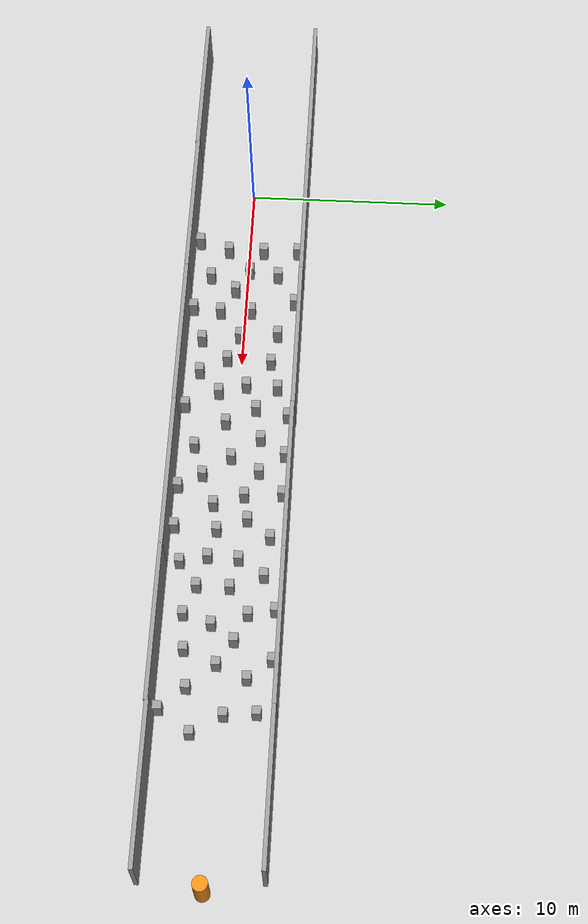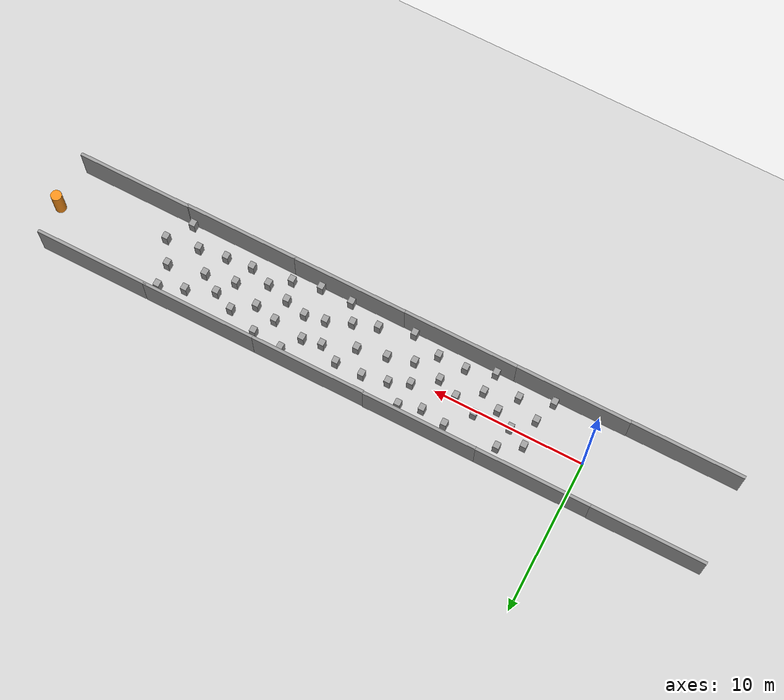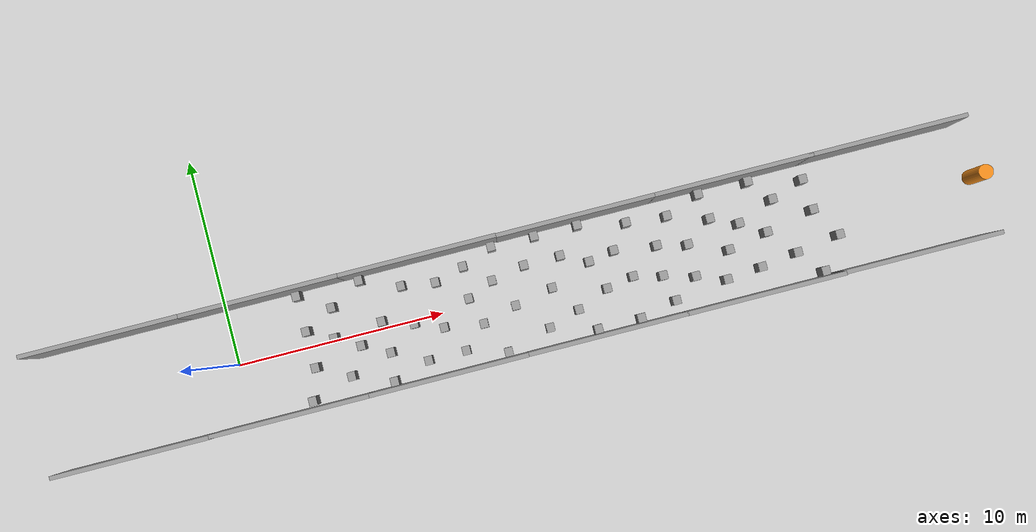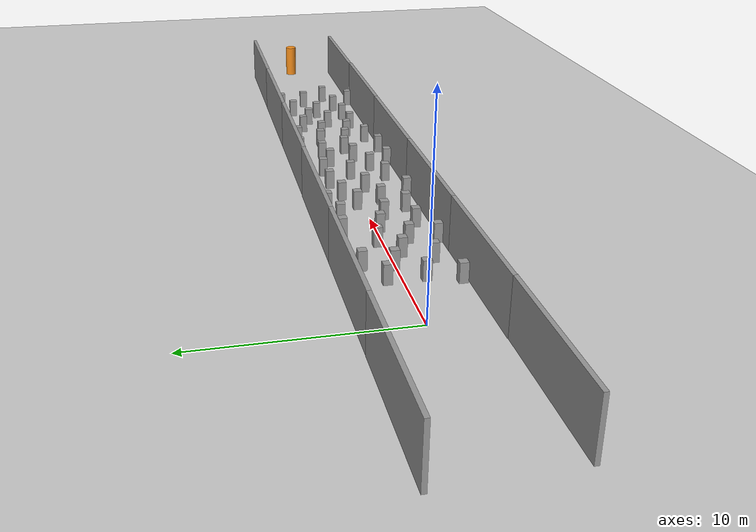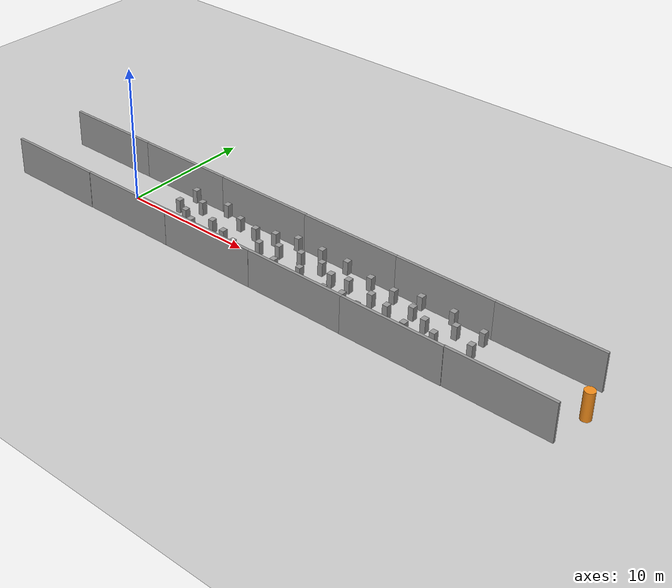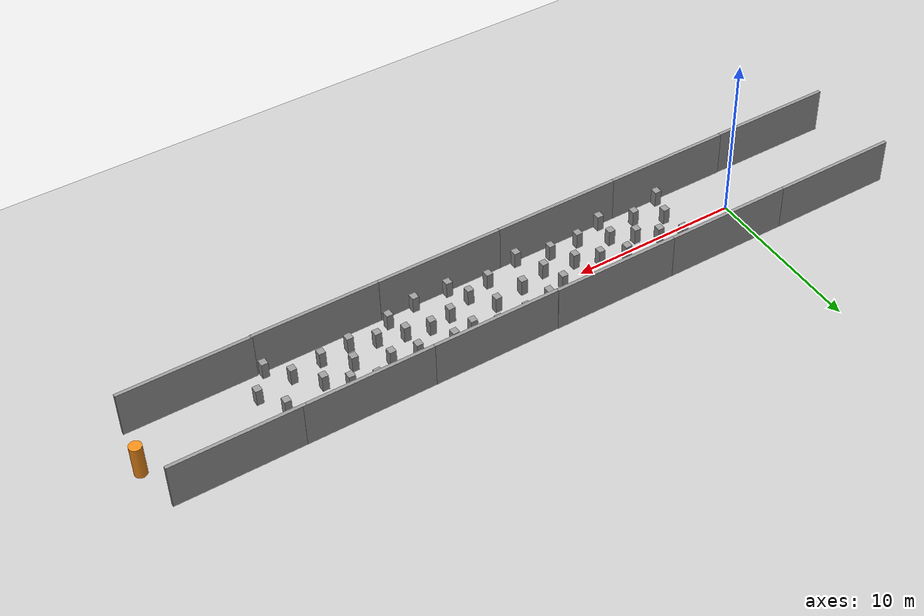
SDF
<sdf version="1.6">
 <world name="default">
  <plugin filename="gz-sim-physics-system" name="gz::sim::systems::Physics"/>
  <plugin filename="gz-sim-sensors-system" name="gz::sim::systems::Sensors">
   <render_engine>ogre2</render_engine>
  </plugin>
  <plugin filename="gz-sim-imu-system" name="gz::sim::systems::Imu"/>
  <plugin filename="gz-sim-scene-broadcaster-system" name="gz::sim::systems::SceneBroadcaster"/>
  <plugin filename="gz-sim-user-commands-system" name="gz::sim::systems::UserCommands"/>
  <light name="sun" type="directional">
   <pose>0 0 10 0 -0 0</pose>
   <diffuse>0.8 0.8 0.8 1</diffuse>
   <specular>0.2 0.2 0.2 1</specular>
   <attenuation>
    <range>1000</range>
    <constant>0.9</constant>
    <linear>0.01</linear>
    <quadratic>0.001</quadratic>
   </attenuation>
   <direction>-0.5 0.1 -0.9</direction>
  </light>
  <model name="ground_plane">
   <static>1</static>
   <link name="link">
    <collision name="collision">
     <geometry><plane><normal>0 0 1</normal><size>100 100</size></plane></geometry>
     <surface><friction><ode><mu>1000</mu><mu2>1000</mu2></ode></friction></surface>
    </collision>
    <visual name="visual">
     <cast_shadows>0</cast_shadows>
     <geometry><plane><normal>0 0 1</normal><size>100 100</size></plane></geometry>
     <material>
      <script><uri>file://media/materials/scripts/gazebo.material</uri><name>Gazebo/Grey</name></script>
     </material>
    </visual>
    <velocity_decay><linear>0</linear><angular>0</angular></velocity_decay>
   </link>
  </model>
  <physics name="default_physics" default="0" type="ode">
   <max_step_size>0.001</max_step_size>
   <real_time_factor>1</real_time_factor>
   <real_time_update_rate>1000</real_time_update_rate>
  </physics>
  <scene><ambient>0.4 0.4 0.4 1</ambient><background>0.7 0.7 0.7 1</background><shadows>1</shadows></scene>
  <spherical_coordinates>
   <surface_model>EARTH_WGS84</surface_model>
   <latitude_deg>0</latitude_deg>
   <longitude_deg>0</longitude_deg>
   <elevation>0</elevation>
   <heading_deg>0</heading_deg>
  </spherical_coordinates>
  <model name="grey_wall">
   <static>1</static>
   <link name="link">
    <pose>0 0 1.4 0 -0 0</pose>
    <collision name="collision"><geometry><box><size>7.5 0.2 2.8</size></box></geometry></collision>
    <visual name="visual">
     <cast_shadows>0</cast_shadows>
     <geometry><box><size>7.5 0.2 2.8</size></box></geometry>
     <material>
      <script>
       <uri>model://grey_wall/materials/scripts</uri>
       <uri>model://grey_wall/materials/textures</uri>
       <name>vrc/grey_wall</name>
      </script>
     </material>
    </visual>
    <velocity_decay><linear>0</linear><angular>0</angular></velocity_decay>
   </link>
   <pose>17.1032 2.73796 0 0 -0 0</pose>
  </model>
  <model name="grey_wall_0">
   <static>1</static>
   <link name="link">
    <pose>0 0 1.4 0 -0 0</pose>
    <collision name="collision"><geometry><box><size>7.5 0.2 2.8</size></box></geometry></collision>
    <visual name="visual">
     <cast_shadows>0</cast_shadows>
     <geometry><box><size>7.5 0.2 2.8</size></box></geometry>
     <material>
      <script>
       <uri>model://grey_wall/materials/scripts</uri>
       <uri>model://grey_wall/materials/textures</uri>
       <name>vrc/grey_wall</name>
      </script>
     </material>
    </visual>
    <velocity_decay><linear>0</linear><angular>0</angular></velocity_decay>
   </link>
   <pose>17.2246 -2.87669 0 0 -0 0</pose>
  </model>
  <gravity>0 0 -9.8</gravity>
  <magnetic_field>6e-06 2.3e-05 -4.2e-05</magnetic_field>
  <atmosphere type="adiabatic"/>
  <model name="grey_wall_clone">
   <static>1</static>
   <link name="link">
    <pose>0 0 1.4 0 -0 0</pose>
    <collision name="collision"><geometry><box><size>7.5 0.2 2.8</size></box></geometry></collision>
    <visual name="visual">
     <cast_shadows>0</cast_shadows>
     <geometry><box><size>7.5 0.2 2.8</size></box></geometry>
     <material>
      <script>
       <uri>model://grey_wall/materials/scripts</uri>
       <uri>model://grey_wall/materials/textures</uri>
       <name>vrc/grey_wall</name>
      </script>
     </material>
    </visual>
    <velocity_decay><linear>0</linear><angular>0</angular></velocity_decay>
   </link>
   <pose>2.16529 2.76561 0 0 -0 0</pose>
  </model>
  <model name="grey_wall_clone_0">
   <static>1</static>
   <link name="link">
    <pose>0 0 1.4 0 -0 0</pose>
    <collision name="collision"><geometry><box><size>7.5 0.2 2.8</size></box></geometry></collision>
    <visual name="visual">
     <cast_shadows>0</cast_shadows>
     <geometry><box><size>7.5 0.2 2.8</size></box></geometry>
     <material>
      <script>
       <uri>model://grey_wall/materials/scripts</uri>
       <uri>model://grey_wall/materials/textures</uri>
       <name>vrc/grey_wall</name>
      </script>
     </material>
    </visual>
    <velocity_decay><linear>0</linear><angular>0</angular></velocity_decay>
   </link>
   <pose>2.23318 -2.88881 0 0 -0 0</pose>
  </model>
  <model name="grey_wall_clone_1">
   <static>1</static>
   <link name="link">
    <pose>0 0 1.4 0 -0 0</pose>
    <collision name="collision"><geometry><box><size>7.5 0.2 2.8</size></box></geometry></collision>
    <visual name="visual">
     <cast_shadows>0</cast_shadows>
     <geometry><box><size>7.5 0.2 2.8</size></box></geometry>
     <material>
      <script>
       <uri>model://grey_wall/materials/scripts</uri>
       <uri>model://grey_wall/materials/textures</uri>
       <name>vrc/grey_wall</name>
      </script>
     </material>
    </visual>
    <velocity_decay><linear>0</linear><angular>0</angular></velocity_decay>
   </link>
   <pose>9.72907 -2.8848 0 0 -0 0</pose>
  </model>
  <model name="grey_wall_clone_2">
   <static>1</static>
   <link name="link">
    <pose>0 0 1.4 0 -0 0</pose>
    <collision name="collision"><geometry><box><size>7.5 0.2 2.8</size></box></geometry></collision>
    <visual name="visual">
     <cast_shadows>0</cast_shadows>
     <geometry><box><size>7.5 0.2 2.8</size></box></geometry>
     <material>
      <script>
       <uri>model://grey_wall/materials/scripts</uri>
       <uri>model://grey_wall/materials/textures</uri>
       <name>vrc/grey_wall</name>
      </script>
     </material>
    </visual>
    <velocity_decay><linear>0</linear><angular>0</angular></velocity_decay>
   </link>
   <pose>9.64207 2.76067 0 0 -0 0</pose>
  </model>
  <model name="grey_wall_clone_3">
   <static>1</static>
   <link name="link">
    <pose>0 0 1.4 0 -0 0</pose>
    <collision name="collision"><geometry><box><size>7.5 0.2 2.8</size></box></geometry></collision>
    <visual name="visual">
     <cast_shadows>0</cast_shadows>
     <geometry><box><size>7.5 0.2 2.8</size></box></geometry>
     <material>
      <script>
       <uri>model://grey_wall/materials/scripts</uri>
       <uri>model://grey_wall/materials/textures</uri>
       <name>vrc/grey_wall</name>
      </script>
     </material>
    </visual>
    <velocity_decay><linear>0</linear><angular>0</angular></velocity_decay>
   </link>
   <pose>24.5861 2.73638 0 0 -0 0</pose>
  </model>
  <model name="grey_wall_clone_4">
   <static>1</static>
   <link name="link">
    <pose>0 0 1.4 0 -0 0</pose>
    <collision name="collision"><geometry><box><size>7.5 0.2 2.8</size></box></geometry></collision>
    <visual name="visual">
     <cast_shadows>0</cast_shadows>
     <geometry><box><size>7.5 0.2 2.8</size></box></geometry>
     <material>
      <script>
       <uri>model://grey_wall/materials/scripts</uri>
       <uri>model://grey_wall/materials/textures</uri>
       <name>vrc/grey_wall</name>
      </script>
     </material>
    </visual>
    <velocity_decay><linear>0</linear><angular>0</angular></velocity_decay>
   </link>
   <pose>24.6598 -2.88231 0 0 -0 0</pose>
  </model>
  <model name="unit_box_0">
   <pose>11.8117 -0.980014 0.5 0 0 -0.001219</pose>
   <link name="link">
    <inertial>
     <mass>1</mass>
     <inertia>
      <ixx>0.166667</ixx>
      <ixy>0</ixy>
      <ixz>0</ixz>
      <iyy>0.166667</iyy>
      <iyz>0</iyz>
      <izz>0.166667</izz>
     </inertia>
    </inertial>
    <collision name="collision"><geometry><box><size>0.392878 0.422643 1</size></box></geometry></collision>
    <visual name="visual">
     <geometry><box><size>0.392878 0.422643 1</size></box></geometry>
     <material>
      <script><name>Gazebo/Grey</name><uri>file://media/materials/scripts/gazebo.material</uri></script>
     </material>
    </visual>
   </link>
  </model>
  <model name="unit_box_0_clone">
   <pose>12.6731 0.892982 0.500001 -2e-06 1e-06 -0.000714</pose>
   <link name="link">
    <inertial>
     <mass>1</mass>
     <inertia>
      <ixx>0.166667</ixx>
      <ixy>0</ixy>
      <ixz>0</ixz>
      <iyy>0.166667</iyy>
      <iyz>0</iyz>
      <izz>0.166667</izz>
     </inertia>
    </inertial>
    <collision name="collision"><geometry><box><size>0.392878 0.422643 1</size></box></geometry></collision>
    <visual name="visual">
     <geometry><box><size>0.392878 0.422643 1</size></box></geometry>
     <material>
      <script><name>Gazebo/Grey</name><uri>file://media/materials/scripts/gazebo.material</uri></script>
     </material>
    </visual>
   </link>
  </model>
  <model name="unit_box_0_clone_1">
   <pose>4.81267 0.1036 0.499999 -3e-06 4e-06 -0.000761</pose>
   <link name="link">
    <inertial>
     <mass>1</mass>
     <inertia>
      <ixx>0.166667</ixx>
      <ixy>0</ixy>
      <ixz>0</ixz>
      <iyy>0.166667</iyy>
      <iyz>0</iyz>
      <izz>0.166667</izz>
     </inertia>
    </inertial>
    <collision name="collision"><geometry><box><size>0.392878 0.422643 1</size></box></geometry></collision>
    <visual name="visual">
     <geometry><box><size>0.392878 0.422643 1</size></box></geometry>
     <material>
      <script><name>Gazebo/Grey</name><uri>file://media/materials/scripts/gazebo.material</uri></script>
     </material>
    </visual>
   </link>
  </model>
  <model name="unit_box_0_clone_2">
   <pose>3.13793 -2.51627 0.499999 -3e-06 -4e-06 -7.1e-05</pose>
   <link name="link">
    <inertial>
     <mass>1</mass>
     <inertia>
      <ixx>0.166667</ixx>
      <ixy>0</ixy>
      <ixz>0</ixz>
      <iyy>0.166667</iyy>
      <iyz>0</iyz>
      <izz>0.166667</izz>
     </inertia>
    </inertial>
    <collision name="collision"><geometry><box><size>0.392878 0.422643 1</size></box></geometry></collision>
    <visual name="visual">
     <geometry><box><size>0.392878 0.422643 1</size></box></geometry>
     <material>
      <script><name>Gazebo/Grey</name><uri>file://media/materials/scripts/gazebo.material</uri></script>
     </material>
    </visual>
   </link>
  </model>
  <model name="unit_box_0_clone_3">
   <pose>5.18507 -1.83299 0.499999 -3e-06 -4e-06 -0.000659</pose>
   <link name="link">
    <inertial>
     <mass>1</mass>
     <inertia>
      <ixx>0.166667</ixx>
      <ixy>0</ixy>
      <ixz>0</ixz>
      <iyy>0.166667</iyy>
      <iyz>0</iyz>
      <izz>0.166667</izz>
     </inertia>
    </inertial>
    <collision name="collision"><geometry><box><size>0.392878 0.422643 1</size></box></geometry></collision>
    <visual name="visual">
     <geometry><box><size>0.392878 0.422643 1</size></box></geometry>
     <material>
      <script><name>Gazebo/Grey</name><uri>file://media/materials/scripts/gazebo.material</uri></script>
     </material>
    </visual>
   </link>
  </model>
  <model name="unit_box_0_clone_5">
   <pose>5.02757 1.53336 0.500001 -1e-06 2e-06 -0.000603</pose>
   <link name="link">
    <inertial>
     <mass>1</mass>
     <inertia>
      <ixx>0.166667</ixx>
      <ixy>0</ixy>
      <ixz>0</ixz>
      <iyy>0.166667</iyy>
      <iyz>0</iyz>
      <izz>0.166667</izz>
     </inertia>
    </inertial>
    <collision name="collision"><geometry><box><size>0.392878 0.422643 1</size></box></geometry></collision>
    <visual name="visual">
     <geometry><box><size>0.392878 0.422643 1</size></box></geometry>
     <material>
      <script><name>Gazebo/Grey</name><uri>file://media/materials/scripts/gazebo.material</uri></script>
     </material>
    </visual>
   </link>
  </model>
  <model name="unit_box_0_clone_5_clone">
   <pose>8.61982 -0.165355 0.500001 -1e-06 -2e-06 -0.000689</pose>
   <link name="link">
    <inertial>
     <mass>1</mass>
     <inertia>
      <ixx>0.166667</ixx>
      <ixy>0</ixy>
      <ixz>0</ixz>
      <iyy>0.166667</iyy>
      <iyz>0</iyz>
      <izz>0.166667</izz>
     </inertia>
    </inertial>
    <collision name="collision"><geometry><box><size>0.392878 0.422643 1</size></box></geometry></collision>
    <visual name="visual">
     <geometry><box><size>0.392878 0.422643 1</size></box></geometry>
     <material>
      <script><name>Gazebo/Grey</name><uri>file://media/materials/scripts/gazebo.material</uri></script>
     </material>
    </visual>
   </link>
  </model>
  <model name="unit_box_0_clone_5_clone_0">
   <pose>6.58177 2.44935 0.5 0 -0 0</pose>
   <link name="link">
    <inertial>
     <mass>1</mass>
     <inertia>
      <ixx>0.166667</ixx>
      <ixy>0</ixy>
      <ixz>0</ixz>
      <iyy>0.166667</iyy>
      <iyz>0</iyz>
      <izz>0.166667</izz>
     </inertia>
    </inertial>
    <collision name="collision"><geometry><box><size>0.392878 0.422643 1</size></box></geometry></collision>
    <visual name="visual">
     <geometry><box><size>0.392878 0.422643 1</size></box></geometry>
     <material>
      <script><name>Gazebo/Grey</name><uri>file://media/materials/scripts/gazebo.material</uri></script>
     </material>
    </visual>
   </link>
  </model>
  <model name="unit_box_0_clone_5_clone_1">
   <pose>7.15955 0.314717 0.499999 2e-06 4e-06 -0.000516</pose>
   <link name="link">
    <inertial>
     <mass>1</mass>
     <inertia>
      <ixx>0.166667</ixx>
      <ixy>0</ixy>
      <ixz>0</ixz>
      <iyy>0.166667</iyy>
      <iyz>0</iyz>
      <izz>0.166667</izz>
     </inertia>
    </inertial>
    <collision name="collision"><geometry><box><size>0.392878 0.422643 1</size></box></geometry></collision>
    <visual name="visual">
     <geometry><box><size>0.392878 0.422643 1</size></box></geometry>
     <material>
      <script><name>Gazebo/Grey</name><uri>file://media/materials/scripts/gazebo.material</uri></script>
     </material>
    </visual>
   </link>
  </model>
  <model name="unit_box_0_clone_5_clone_2">
   <pose>9.95408 -0.687688 0.499999 3e-06 -4e-06 -0.000782</pose>
   <link name="link">
    <inertial>
     <mass>1</mass>
     <inertia>
      <ixx>0.166667</ixx>
      <ixy>0</ixy>
      <ixz>0</ixz>
      <iyy>0.166667</iyy>
      <iyz>0</iyz>
      <izz>0.166667</izz>
     </inertia>
    </inertial>
    <collision name="collision"><geometry><box><size>0.392878 0.422643 1</size></box></geometry></collision>
    <visual name="visual">
     <geometry><box><size>0.392878 0.422643 1</size></box></geometry>
     <material>
      <script><name>Gazebo/Grey</name><uri>file://media/materials/scripts/gazebo.material</uri></script>
     </material>
    </visual>
   </link>
  </model>
  <model name="unit_box_0_clone_5_clone_3">
   <pose>7.07881 -2.57348 0.5 0 -0 0</pose>
   <link name="link">
    <inertial>
     <mass>1</mass>
     <inertia>
      <ixx>0.166667</ixx>
      <ixy>0</ixy>
      <ixz>0</ixz>
      <iyy>0.166667</iyy>
      <iyz>0</iyz>
      <izz>0.166667</izz>
     </inertia>
    </inertial>
    <collision name="collision"><geometry><box><size>0.392878 0.422643 1</size></box></geometry></collision>
    <visual name="visual">
     <geometry><box><size>0.392878 0.422643 1</size></box></geometry>
     <material>
      <script><name>Gazebo/Grey</name><uri>file://media/materials/scripts/gazebo.material</uri></script>
     </material>
    </visual>
   </link>
  </model>
  <model name="unit_box_0_clone_5_clone_2_clone">
   <pose>3.5526 2.45429 0.5 0 -0 0</pose>
   <link name="link">
    <inertial>
     <mass>1</mass>
     <inertia>
      <ixx>0.166667</ixx>
      <ixy>0</ixy>
      <ixz>0</ixz>
      <iyy>0.166667</iyy>
      <iyz>0</iyz>
      <izz>0.166667</izz>
     </inertia>
    </inertial>
    <collision name="collision"><geometry><box><size>0.392878 0.422643 1</size></box></geometry></collision>
    <visual name="visual">
     <geometry><box><size>0.392878 0.422643 1</size></box></geometry>
     <material>
      <script><name>Gazebo/Grey</name><uri>file://media/materials/scripts/gazebo.material</uri></script>
     </material>
    </visual>
   </link>
  </model>
  <model name="unit_box_0_clone_5_clone_2_clone_0">
   <pose>10.0633 1.47354 0.499999 -2e-06 -4e-06 -0.000997</pose>
   <link name="link">
    <inertial>
     <mass>1</mass>
     <inertia>
      <ixx>0.166667</ixx>
      <ixy>0</ixy>
      <ixz>0</ixz>
      <iyy>0.166667</iyy>
      <iyz>0</iyz>
      <izz>0.166667</izz>
     </inertia>
    </inertial>
    <collision name="collision"><geometry><box><size>0.392878 0.422643 1</size></box></geometry></collision>
    <visual name="visual">
     <geometry><box><size>0.392878 0.422643 1</size></box></geometry>
     <material>
      <script><name>Gazebo/Grey</name><uri>file://media/materials/scripts/gazebo.material</uri></script>
     </material>
    </visual>
   </link>
  </model>
  <model name="unit_box_0_clone_5_clone_2_clone_1">
   <pose>14.3021 1.22095 0.499999 -3e-06 4e-06 -0.000873</pose>
   <link name="link">
    <inertial>
     <mass>1</mass>
     <inertia>
      <ixx>0.166667</ixx>
      <ixy>0</ixy>
      <ixz>0</ixz>
      <iyy>0.166667</iyy>
      <iyz>0</iyz>
      <izz>0.166667</izz>
     </inertia>
    </inertial>
    <collision name="collision"><geometry><box><size>0.392878 0.422643 1</size></box></geometry></collision>
    <visual name="visual">
     <geometry><box><size>0.392878 0.422643 1</size></box></geometry>
     <material>
      <script><name>Gazebo/Grey</name><uri>file://media/materials/scripts/gazebo.material</uri></script>
     </material>
    </visual>
   </link>
  </model>
  <model name="unit_box_0_clone_5_clone_2_clone_2">
   <pose>13.009 2.44935 0.5 0 -0 0</pose>
   <link name="link">
    <inertial>
     <mass>1</mass>
     <inertia>
      <ixx>0.166667</ixx>
      <ixy>0</ixy>
      <ixz>0</ixz>
      <iyy>0.166667</iyy>
      <iyz>0</iyz>
      <izz>0.166667</izz>
     </inertia>
    </inertial>
    <collision name="collision"><geometry><box><size>0.392878 0.422643 1</size></box></geometry></collision>
    <visual name="visual">
     <geometry><box><size>0.392878 0.422643 1</size></box></geometry>
     <material>
      <script><name>Gazebo/Grey</name><uri>file://media/materials/scripts/gazebo.material</uri></script>
     </material>
    </visual>
   </link>
  </model>
  <model name="unit_box_0_clone_5_clone_2_clone_3">
   <pose>10.6945 -1.996 0.499999 -3e-06 4e-06 -0.000587</pose>
   <link name="link">
    <inertial>
     <mass>1</mass>
     <inertia>
      <ixx>0.166667</ixx>
      <ixy>0</ixy>
      <ixz>0</ixz>
      <iyy>0.166667</iyy>
      <iyz>0</iyz>
      <izz>0.166667</izz>
     </inertia>
    </inertial>
    <collision name="collision"><geometry><box><size>0.392878 0.422643 1</size></box></geometry></collision>
    <visual name="visual">
     <geometry><box><size>0.392878 0.422643 1</size></box></geometry>
     <material>
      <script><name>Gazebo/Grey</name><uri>file://media/materials/scripts/gazebo.material</uri></script>
     </material>
    </visual>
   </link>
  </model>
  <model name="unit_box_0_clone_5_clone_2_clone_4">
   <pose>11.4058 0.343176 0.500001 0 -2e-06 -0.000874</pose>
   <link name="link">
    <inertial>
     <mass>1</mass>
     <inertia>
      <ixx>0.166667</ixx>
      <ixy>0</ixy>
      <ixz>0</ixz>
      <iyy>0.166667</iyy>
      <iyz>0</iyz>
      <izz>0.166667</izz>
     </inertia>
    </inertial>
    <collision name="collision"><geometry><box><size>0.392878 0.422643 1</size></box></geometry></collision>
    <visual name="visual">
     <geometry><box><size>0.392878 0.422643 1</size></box></geometry>
     <material>
      <script><name>Gazebo/Grey</name><uri>file://media/materials/scripts/gazebo.material</uri></script>
     </material>
    </visual>
   </link>
  </model>
  <model name="unit_box_0_clone_5_clone_2_clone_5">
   <pose>12.6126 -2.55694 0.499999 4e-06 3e-06 -0.000445</pose>
   <link name="link">
    <inertial>
     <mass>1</mass>
     <inertia>
      <ixx>0.166667</ixx>
      <ixy>0</ixy>
      <ixz>0</ixz>
      <iyy>0.166667</iyy>
      <iyz>0</iyz>
      <izz>0.166667</izz>
     </inertia>
    </inertial>
    <collision name="collision"><geometry><box><size>0.392878 0.422643 1</size></box></geometry></collision>
    <visual name="visual">
     <geometry><box><size>0.392878 0.422643 1</size></box></geometry>
     <material>
      <script><name>Gazebo/Grey</name><uri>file://media/materials/scripts/gazebo.material</uri></script>
     </material>
    </visual>
   </link>
  </model>
  <model name="unit_box_0_clone_5_clone_2_clone_6">
   <pose>13.4663 -0.522282 0.500001 1e-06 -2e-06 -0.000753</pose>
   <link name="link">
    <inertial>
     <mass>1</mass>
     <inertia>
      <ixx>0.166667</ixx>
      <ixy>0</ixy>
      <ixz>0</ixz>
      <iyy>0.166667</iyy>
      <iyz>0</iyz>
      <izz>0.166667</izz>
     </inertia>
    </inertial>
    <collision name="collision"><geometry><box><size>0.392878 0.422643 1</size></box></geometry></collision>
    <visual name="visual">
     <geometry><box><size>0.392878 0.422643 1</size></box></geometry>
     <material>
      <script><name>Gazebo/Grey</name><uri>file://media/materials/scripts/gazebo.material</uri></script>
     </material>
    </visual>
   </link>
  </model>
  <model name="unit_box_0_clone_3_clone">
   <pose>3.60453 0.73296 0.500001 0 -2e-06 -0.000573</pose>
   <link name="link">
    <inertial>
     <mass>1</mass>
     <inertia>
      <ixx>0.166667</ixx>
      <ixy>0</ixy>
      <ixz>0</ixz>
      <iyy>0.166667</iyy>
      <iyz>0</iyz>
      <izz>0.166667</izz>
     </inertia>
    </inertial>
    <collision name="collision"><geometry><box><size>0.392878 0.422643 1</size></box></geometry></collision>
    <visual name="visual">
     <geometry><box><size>0.392878 0.422643 1</size></box></geometry>
     <material>
      <script><name>Gazebo/Grey</name><uri>file://media/materials/scripts/gazebo.material</uri></script>
     </material>
    </visual>
   </link>
  </model>
  <model name="unit_box_0_clone_3_clone_0">
   <pose>7.23497 -1.21039 0.500001 1e-06 -2e-06 -0.001043</pose>
   <link name="link">
    <inertial>
     <mass>1</mass>
     <inertia>
      <ixx>0.166667</ixx>
      <ixy>0</ixy>
      <ixz>0</ixz>
      <iyy>0.166667</iyy>
      <iyz>0</iyz>
      <izz>0.166667</izz>
     </inertia>
    </inertial>
    <collision name="collision"><geometry><box><size>0.392878 0.422643 1</size></box></geometry></collision>
    <visual name="visual">
     <geometry><box><size>0.392878 0.422643 1</size></box></geometry>
     <material>
      <script><name>Gazebo/Grey</name><uri>file://media/materials/scripts/gazebo.material</uri></script>
     </material>
    </visual>
   </link>
  </model>
  <model name="unit_box_0_clone_3_clone_1">
   <pose>11.4956 1.87689 0.499999 5e-06 2e-06 -0.000736</pose>
   <link name="link">
    <inertial>
     <mass>1</mass>
     <inertia>
      <ixx>0.166667</ixx>
      <ixy>0</ixy>
      <ixz>0</ixz>
      <iyy>0.166667</iyy>
      <iyz>0</iyz>
      <izz>0.166667</izz>
     </inertia>
    </inertial>
    <collision name="collision"><geometry><box><size>0.392878 0.422643 1</size></box></geometry></collision>
    <visual name="visual">
     <geometry><box><size>0.392878 0.422643 1</size></box></geometry>
     <material>
      <script><name>Gazebo/Grey</name><uri>file://media/materials/scripts/gazebo.material</uri></script>
     </material>
    </visual>
   </link>
  </model>
  <model name="unit_box_0_clone_3_clone_2">
   <pose>8.45247 1.70718 0.499999 -3e-06 4e-06 -0.001042</pose>
   <link name="link">
    <inertial>
     <mass>1</mass>
     <inertia>
      <ixx>0.166667</ixx>
      <ixy>0</ixy>
      <ixz>0</ixz>
      <iyy>0.166667</iyy>
      <iyz>0</iyz>
      <izz>0.166667</izz>
     </inertia>
    </inertial>
    <collision name="collision"><geometry><box><size>0.392878 0.422643 1</size></box></geometry></collision>
    <visual name="visual">
     <geometry><box><size>0.392878 0.422643 1</size></box></geometry>
     <material>
      <script><name>Gazebo/Grey</name><uri>file://media/materials/scripts/gazebo.material</uri></script>
     </material>
    </visual>
   </link>
  </model>
  <model name="unit_box_0_clone_3_clone_3">
   <pose>8.87398 -2.01335 0.5 0 0 -0.000474</pose>
   <link name="link">
    <inertial>
     <mass>1</mass>
     <inertia>
      <ixx>0.166667</ixx>
      <ixy>0</ixy>
      <ixz>0</ixz>
      <iyy>0.166667</iyy>
      <iyz>0</iyz>
      <izz>0.166667</izz>
     </inertia>
    </inertial>
    <collision name="collision"><geometry><box><size>0.392878 0.422643 1</size></box></geometry></collision>
    <visual name="visual">
     <geometry><box><size>0.392878 0.422643 1</size></box></geometry>
     <material>
      <script><name>Gazebo/Grey</name><uri>file://media/materials/scripts/gazebo.material</uri></script>
     </material>
    </visual>
   </link>
  </model>
  <model name="unit_box_0_clone_3_clone_4">
   <pose>3.62381 -1.02676 0.499999 2e-06 -4e-06 -0.000554</pose>
   <link name="link">
    <inertial>
     <mass>1</mass>
     <inertia>
      <ixx>0.166667</ixx>
      <ixy>0</ixy>
      <ixz>0</ixz>
      <iyy>0.166667</iyy>
      <iyz>0</iyz>
      <izz>0.166667</izz>
     </inertia>
    </inertial>
    <collision name="collision"><geometry><box><size>0.392878 0.422643 1</size></box></geometry></collision>
    <visual name="visual">
     <geometry><box><size>0.392878 0.422643 1</size></box></geometry>
     <material>
      <script><name>Gazebo/Grey</name><uri>file://media/materials/scripts/gazebo.material</uri></script>
     </material>
    </visual>
   </link>
  </model>
  <model name="unit_box_0_clone_3_clone_5">
   <pose>5.9596 -0.547039 0.499999 3e-06 4e-06 -0.001372</pose>
   <link name="link">
    <inertial>
     <mass>1</mass>
     <inertia>
      <ixx>0.166667</ixx>
      <ixy>0</ixy>
      <ixz>0</ixz>
      <iyy>0.166667</iyy>
      <iyz>0</iyz>
      <izz>0.166667</izz>
     </inertia>
    </inertial>
    <collision name="collision"><geometry><box><size>0.392878 0.422643 1</size></box></geometry></collision>
    <visual name="visual">
     <geometry><box><size>0.392878 0.422643 1</size></box></geometry>
     <material>
      <script><name>Gazebo/Grey</name><uri>file://media/materials/scripts/gazebo.material</uri></script>
     </material>
    </visual>
   </link>
  </model>
  <model name="unit_box_0_clone_5_clone_1_clone">
   <pose>14.7891 -1.94096 0.499999 4e-06 3e-06 2.8e-05</pose>
   <link name="link">
    <inertial>
     <mass>1</mass>
     <inertia>
      <ixx>0.166667</ixx>
      <ixy>0</ixy>
      <ixz>0</ixz>
      <iyy>0.166667</iyy>
      <iyz>0</iyz>
      <izz>0.166667</izz>
     </inertia>
    </inertial>
    <collision name="collision"><geometry><box><size>0.392878 0.422643 1</size></box></geometry></collision>
    <visual name="visual">
     <geometry><box><size>0.392878 0.422643 1</size></box></geometry>
     <material>
      <script><name>Gazebo/Grey</name><uri>file://media/materials/scripts/gazebo.material</uri></script>
     </material>
    </visual>
   </link>
  </model>
  <model name="unit_box_0_clone_5_clone_1_clone_0">
   <pose>15.3391 -0.137118 0.499999 4e-06 2e-06 -0.000347</pose>
   <link name="link">
    <inertial>
     <mass>1</mass>
     <inertia>
      <ixx>0.166667</ixx>
      <ixy>0</ixy>
      <ixz>0</ixz>
      <iyy>0.166667</iyy>
      <iyz>0</iyz>
      <izz>0.166667</izz>
     </inertia>
    </inertial>
    <collision name="collision"><geometry><box><size>0.392878 0.422643 1</size></box></geometry></collision>
    <visual name="visual">
     <geometry><box><size>0.392878 0.422643 1</size></box></geometry>
     <material>
      <script><name>Gazebo/Grey</name><uri>file://media/materials/scripts/gazebo.material</uri></script>
     </material>
    </visual>
   </link>
  </model>
  <model name="unit_box_0_clone_5_clone_1_clone_1">
   <pose>16.0654 1.24238 0.500001 0 3e-06 -0.000688</pose>
   <link name="link">
    <inertial>
     <mass>1</mass>
     <inertia>
      <ixx>0.166667</ixx>
      <ixy>0</ixy>
      <ixz>0</ixz>
      <iyy>0.166667</iyy>
      <iyz>0</iyz>
      <izz>0.166667</izz>
     </inertia>
    </inertial>
    <collision name="collision"><geometry><box><size>0.392878 0.422643 1</size></box></geometry></collision>
    <visual name="visual">
     <geometry><box><size>0.392878 0.422643 1</size></box></geometry>
     <material>
      <script><name>Gazebo/Grey</name><uri>file://media/materials/scripts/gazebo.material</uri></script>
     </material>
    </visual>
   </link>
  </model>
  <model name="unit_box_0_clone_5_clone_1_clone_2">
   <pose>15.0986 2.42664 0.5 0 -0 0</pose>
   <link name="link">
    <inertial>
     <mass>1</mass>
     <inertia>
      <ixx>0.166667</ixx>
      <ixy>0</ixy>
      <ixz>0</ixz>
      <iyy>0.166667</iyy>
      <iyz>0</iyz>
      <izz>0.166667</izz>
     </inertia>
    </inertial>
    <collision name="collision"><geometry><box><size>0.392878 0.422643 1</size></box></geometry></collision>
    <visual name="visual">
     <geometry><box><size>0.392878 0.422643 1</size></box></geometry>
     <material>
      <script><name>Gazebo/Grey</name><uri>file://media/materials/scripts/gazebo.material</uri></script>
     </material>
    </visual>
   </link>
  </model>
  <model name="unit_box_0_clone_5_clone_1_clone_3">
   <pose>17.3334 0.622776 0.499999 4e-06 -2e-06 -0.000356</pose>
   <link name="link">
    <inertial>
     <mass>1</mass>
     <inertia>
      <ixx>0.166667</ixx>
      <ixy>0</ixy>
      <ixz>0</ixz>
      <iyy>0.166667</iyy>
      <iyz>0</iyz>
      <izz>0.166667</izz>
     </inertia>
    </inertial>
    <collision name="collision"><geometry><box><size>0.392878 0.422643 1</size></box></geometry></collision>
    <visual name="visual">
     <geometry><box><size>0.392878 0.422643 1</size></box></geometry>
     <material>
      <script><name>Gazebo/Grey</name><uri>file://media/materials/scripts/gazebo.material</uri></script>
     </material>
    </visual>
   </link>
  </model>
  <model name="unit_box_0_clone_5_clone_1_clone_4">
   <pose>16.309 -1.4438 0.499999 4e-06 -2e-06 -0.000315</pose>
   <link name="link">
    <inertial>
     <mass>1</mass>
     <inertia>
      <ixx>0.166667</ixx>
      <ixy>0</ixy>
      <ixz>0</ixz>
      <iyy>0.166667</iyy>
      <iyz>0</iyz>
      <izz>0.166667</izz>
     </inertia>
    </inertial>
    <collision name="collision"><geometry><box><size>0.392878 0.422643 1</size></box></geometry></collision>
    <visual name="visual">
     <geometry><box><size>0.392878 0.422643 1</size></box></geometry>
     <material>
      <script><name>Gazebo/Grey</name><uri>file://media/materials/scripts/gazebo.material</uri></script>
     </material>
    </visual>
   </link>
  </model>
  <model name="unit_box_0_clone_5_clone_1_clone_5">
   <pose>17.8481 -0.810112 0.500001 2e-06 -1e-06 -0.000342</pose>
   <link name="link">
    <inertial>
     <mass>1</mass>
     <inertia>
      <ixx>0.166667</ixx>
      <ixy>0</ixy>
      <ixz>0</ixz>
      <iyy>0.166667</iyy>
      <iyz>0</iyz>
      <izz>0.166667</izz>
     </inertia>
    </inertial>
    <collision name="collision"><geometry><box><size>0.392878 0.422643 1</size></box></geometry></collision>
    <visual name="visual">
     <geometry><box><size>0.392878 0.422643 1</size></box></geometry>
     <material>
      <script><name>Gazebo/Grey</name><uri>file://media/materials/scripts/gazebo.material</uri></script>
     </material>
    </visual>
   </link>
  </model>
  <model name="unit_box_0_clone_5_clone_1_clone_6">
   <pose>16.9711 -2.56537 0.5 0 -0 0</pose>
   <link name="link">
    <inertial>
     <mass>1</mass>
     <inertia>
      <ixx>0.166667</ixx>
      <ixy>0</ixy>
      <ixz>0</ixz>
      <iyy>0.166667</iyy>
      <iyz>0</iyz>
      <izz>0.166667</izz>
     </inertia>
    </inertial>
    <collision name="collision"><geometry><box><size>0.392878 0.422643 1</size></box></geometry></collision>
    <visual name="visual">
     <geometry><box><size>0.392878 0.422643 1</size></box></geometry>
     <material>
      <script><name>Gazebo/Grey</name><uri>file://media/materials/scripts/gazebo.material</uri></script>
     </material>
    </visual>
   </link>
  </model>
  <model name="unit_box_0_clone_5_clone_1_clone_7">
   <pose>19.0613 -2.56537 0.5 0 -0 0</pose>
   <link name="link">
    <inertial>
     <mass>1</mass>
     <inertia>
      <ixx>0.166667</ixx>
      <ixy>0</ixy>
      <ixz>0</ixz>
      <iyy>0.166667</iyy>
      <iyz>0</iyz>
      <izz>0.166667</izz>
     </inertia>
    </inertial>
    <collision name="collision"><geometry><box><size>0.392878 0.422643 1</size></box></geometry></collision>
    <visual name="visual">
     <geometry><box><size>0.392878 0.422643 1</size></box></geometry>
     <material>
      <script><name>Gazebo/Grey</name><uri>file://media/materials/scripts/gazebo.material</uri></script>
     </material>
    </visual>
   </link>
  </model>
  <model name="unit_box_0_clone_5_clone_1_clone_10">
   <pose>18.5845 0.850336 0.500001 0 3e-06 -0.0004</pose>
   <link name="link">
    <inertial>
     <mass>1</mass>
     <inertia>
      <ixx>0.166667</ixx>
      <ixy>0</ixy>
      <ixz>0</ixz>
      <iyy>0.166667</iyy>
      <iyz>0</iyz>
      <izz>0.166667</izz>
     </inertia>
    </inertial>
    <collision name="collision"><geometry><box><size>0.392878 0.422643 1</size></box></geometry></collision>
    <visual name="visual">
     <geometry><box><size>0.392878 0.422643 1</size></box></geometry>
     <material>
      <script><name>Gazebo/Grey</name><uri>file://media/materials/scripts/gazebo.material</uri></script>
     </material>
    </visual>
   </link>
  </model>
  <model name="unit_box_0_clone_5_clone_1_clone_11">
   <pose>17.1998 2.42664 0.5 0 -0 0</pose>
   <link name="link">
    <inertial>
     <mass>1</mass>
     <inertia>
      <ixx>0.166667</ixx>
      <ixy>0</ixy>
      <ixz>0</ixz>
      <iyy>0.166667</iyy>
      <iyz>0</iyz>
      <izz>0.166667</izz>
     </inertia>
    </inertial>
    <collision name="collision"><geometry><box><size>0.392878 0.422643 1</size></box></geometry></collision>
    <visual name="visual">
     <geometry><box><size>0.392878 0.422643 1</size></box></geometry>
     <material>
      <script><name>Gazebo/Grey</name><uri>file://media/materials/scripts/gazebo.material</uri></script>
     </material>
    </visual>
   </link>
  </model>
  <model name="unit_box_0_clone_5_clone_1_clone_12">
   <pose>19.473 1.98032 0.500001 1e-06 -1e-06 -4.6e-05</pose>
   <link name="link">
    <inertial>
     <mass>1</mass>
     <inertia>
      <ixx>0.166667</ixx>
      <ixy>0</ixy>
      <ixz>0</ixz>
      <iyy>0.166667</iyy>
      <iyz>0</iyz>
      <izz>0.166667</izz>
     </inertia>
    </inertial>
    <collision name="collision"><geometry><box><size>0.392878 0.422643 1</size></box></geometry></collision>
    <visual name="visual">
     <geometry><box><size>0.392878 0.422643 1</size></box></geometry>
     <material>
      <script><name>Gazebo/Grey</name><uri>file://media/materials/scripts/gazebo.material</uri></script>
     </material>
    </visual>
   </link>
  </model>
  <model name="unit_box_0_clone_5_clone_1_clone_13">
   <pose>20.6133 0.571054 0.500001 1e-06 -2e-06 -0.000387</pose>
   <link name="link">
    <inertial>
     <mass>1</mass>
     <inertia>
      <ixx>0.166667</ixx>
      <ixy>0</ixy>
      <ixz>0</ixz>
      <iyy>0.166667</iyy>
      <iyz>0</iyz>
      <izz>0.166667</izz>
     </inertia>
    </inertial>
    <collision name="collision"><geometry><box><size>0.392878 0.422643 1</size></box></geometry></collision>
    <visual name="visual">
     <geometry><box><size>0.392878 0.422643 1</size></box></geometry>
     <material>
      <script><name>Gazebo/Grey</name><uri>file://media/materials/scripts/gazebo.material</uri></script>
     </material>
    </visual>
   </link>
  </model>
  <model name="unit_box_0_clone_5_clone_1_clone_14">
   <pose>20.5529 -0.882531 0.499999 3e-06 3e-06 -0.000634</pose>
   <link name="link">
    <inertial>
     <mass>1</mass>
     <inertia>
      <ixx>0.166667</ixx>
      <ixy>0</ixy>
      <ixz>0</ixz>
      <iyy>0.166667</iyy>
      <iyz>0</iyz>
      <izz>0.166667</izz>
     </inertia>
    </inertial>
    <collision name="collision"><geometry><box><size>0.392878 0.422643 1</size></box></geometry></collision>
    <visual name="visual">
     <geometry><box><size>0.392878 0.422643 1</size></box></geometry>
     <material>
      <script><name>Gazebo/Grey</name><uri>file://media/materials/scripts/gazebo.material</uri></script>
     </material>
    </visual>
   </link>
  </model>
  <model name="unit_box_0_clone_5_clone_1_clone_15">
   <pose>19.1733 -0.561078 0.499999 -4e-06 3e-06 -0.000251</pose>
   <link name="link">
    <inertial>
     <mass>1</mass>
     <inertia>
      <ixx>0.166667</ixx>
      <ixy>0</ixy>
      <ixz>0</ixz>
      <iyy>0.166667</iyy>
      <iyz>0</iyz>
      <izz>0.166667</izz>
     </inertia>
    </inertial>
    <collision name="collision"><geometry><box><size>0.392878 0.422643 1</size></box></geometry></collision>
    <visual name="visual">
     <geometry><box><size>0.392878 0.422643 1</size></box></geometry>
     <material>
      <script><name>Gazebo/Grey</name><uri>file://media/materials/scripts/gazebo.material</uri></script>
     </material>
    </visual>
   </link>
  </model>
  <model name="unit_box_0_clone_5_clone_1_clone_17">
   <pose>20.8654 -2.16519 0.500001 1e-06 1e-06 -0.000334</pose>
   <link name="link">
    <inertial>
     <mass>1</mass>
     <inertia>
      <ixx>0.166667</ixx>
      <ixy>0</ixy>
      <ixz>0</ixz>
      <iyy>0.166667</iyy>
      <iyz>0</iyz>
      <izz>0.166667</izz>
     </inertia>
    </inertial>
    <collision name="collision"><geometry><box><size>0.392878 0.422643 1</size></box></geometry></collision>
    <visual name="visual">
     <geometry><box><size>0.392878 0.422643 1</size></box></geometry>
     <material>
      <script><name>Gazebo/Grey</name><uri>file://media/materials/scripts/gazebo.material</uri></script>
     </material>
    </visual>
   </link>
  </model>
  <model name="unit_box_0_clone_5_clone_1_clone_18">
   <pose>22.0416 -1.2973 0.5 1e-06 -2e-06 3.2e-05</pose>
   <link name="link">
    <inertial>
     <mass>1</mass>
     <inertia>
      <ixx>0.166667</ixx>
      <ixy>0</ixy>
      <ixz>0</ixz>
      <iyy>0.166667</iyy>
      <iyz>0</iyz>
      <izz>0.166667</izz>
     </inertia>
    </inertial>
    <collision name="collision"><geometry><box><size>0.392878 0.422643 1</size></box></geometry></collision>
    <visual name="visual">
     <geometry><box><size>0.392878 0.422643 1</size></box></geometry>
     <material>
      <script><name>Gazebo/Grey</name><uri>file://media/materials/scripts/gazebo.material</uri></script>
     </material>
    </visual>
   </link>
  </model>
  <model name="unit_box_0_clone_5_clone_1_clone_19">
   <pose>22.0564 0.25376 0.499999 5e-06 2e-06 -0.000285</pose>
   <link name="link">
    <inertial>
     <mass>1</mass>
     <inertia>
      <ixx>0.166667</ixx>
      <ixy>0</ixy>
      <ixz>0</ixz>
      <iyy>0.166667</iyy>
      <iyz>0</iyz>
      <izz>0.166667</izz>
     </inertia>
    </inertial>
    <collision name="collision"><geometry><box><size>0.392878 0.422643 1</size></box></geometry></collision>
    <visual name="visual">
     <geometry><box><size>0.392878 0.422643 1</size></box></geometry>
     <material>
      <script><name>Gazebo/Grey</name><uri>file://media/materials/scripts/gazebo.material</uri></script>
     </material>
    </visual>
   </link>
  </model>
  <model name="unit_box_0_clone_5_clone_1_clone_20">
   <pose>21.416 1.80481 0.499998 4e-06 -4e-06 -0.000108</pose>
   <link name="link">
    <inertial>
     <mass>1</mass>
     <inertia>
      <ixx>0.166667</ixx>
      <ixy>0</ixy>
      <ixz>0</ixz>
      <iyy>0.166667</iyy>
      <iyz>0</iyz>
      <izz>0.166667</izz>
     </inertia>
    </inertial>
    <collision name="collision"><geometry><box><size>0.392878 0.422643 1</size></box></geometry></collision>
    <visual name="visual">
     <geometry><box><size>0.392878 0.422643 1</size></box></geometry>
     <material>
      <script><name>Gazebo/Grey</name><uri>file://media/materials/scripts/gazebo.material</uri></script>
     </material>
    </visual>
   </link>
  </model>
  <model name="unit_box_0_clone_5_clone_1_clone_21">
   <pose>23.1012 2.42506 0.5 0 -0 0</pose>
   <link name="link">
    <inertial>
     <mass>1</mass>
     <inertia>
      <ixx>0.166667</ixx>
      <ixy>0</ixy>
      <ixz>0</ixz>
      <iyy>0.166667</iyy>
      <iyz>0</iyz>
      <izz>0.166667</izz>
     </inertia>
    </inertial>
    <collision name="collision"><geometry><box><size>0.392878 0.422643 1</size></box></geometry></collision>
    <visual name="visual">
     <geometry><box><size>0.392878 0.422643 1</size></box></geometry>
     <material>
      <script><name>Gazebo/Grey</name><uri>file://media/materials/scripts/gazebo.material</uri></script>
     </material>
    </visual>
   </link>
  </model>
  <model name="unit_box_0_clone_5_clone_1_clone_22">
   <pose>23.3498 1.18064 0.499999 -2e-06 4e-06 -0.000238</pose>
   <link name="link">
    <inertial>
     <mass>1</mass>
     <inertia>
      <ixx>0.166667</ixx>
      <ixy>0</ixy>
      <ixz>0</ixz>
      <iyy>0.166667</iyy>
      <iyz>0</iyz>
      <izz>0.166667</izz>
     </inertia>
    </inertial>
    <collision name="collision"><geometry><box><size>0.392878 0.422643 1</size></box></geometry></collision>
    <visual name="visual">
     <geometry><box><size>0.392878 0.422643 1</size></box></geometry>
     <material>
      <script><name>Gazebo/Grey</name><uri>file://media/materials/scripts/gazebo.material</uri></script>
     </material>
    </visual>
   </link>
  </model>
  <model name="unit_box_0_clone_5_clone_1_clone_23">
   <pose>23.8929 -0.471726 0.499999 4e-06 -3e-06 -0.000208</pose>
   <link name="link">
    <inertial>
     <mass>1</mass>
     <inertia>
      <ixx>0.166667</ixx>
      <ixy>0</ixy>
      <ixz>0</ixz>
      <iyy>0.166667</iyy>
      <iyz>0</iyz>
      <izz>0.166667</izz>
     </inertia>
    </inertial>
    <collision name="collision"><geometry><box><size>0.392878 0.422643 1</size></box></geometry></collision>
    <visual name="visual">
     <geometry><box><size>0.392878 0.422643 1</size></box></geometry>
     <material>
      <script><name>Gazebo/Grey</name><uri>file://media/materials/scripts/gazebo.material</uri></script>
     </material>
    </visual>
   </link>
  </model>
  <model name="unit_box_0_clone_5_clone_1_clone_24">
   <pose>24.6509 0.622242 0.499999 -4e-06 -3e-06 -0.000131</pose>
   <link name="link">
    <inertial>
     <mass>1</mass>
     <inertia>
      <ixx>0.166667</ixx>
      <ixy>0</ixy>
      <ixz>0</ixz>
      <iyy>0.166667</iyy>
      <iyz>0</iyz>
      <izz>0.166667</izz>
     </inertia>
    </inertial>
    <collision name="collision"><geometry><box><size>0.392878 0.422643 1</size></box></geometry></collision>
    <visual name="visual">
     <geometry><box><size>0.392878 0.422643 1</size></box></geometry>
     <material>
      <script><name>Gazebo/Grey</name><uri>file://media/materials/scripts/gazebo.material</uri></script>
     </material>
    </visual>
   </link>
  </model>
  <model name="unit_box_0_clone_5_clone_1_clone_25">
   <pose>23.4528 -1.8048 0.499999 4e-06 -3e-06 -0.000477</pose>
   <link name="link">
    <inertial>
     <mass>1</mass>
     <inertia>
      <ixx>0.166667</ixx>
      <ixy>0</ixy>
      <ixz>0</ixz>
      <iyy>0.166667</iyy>
      <iyz>0</iyz>
      <izz>0.166667</izz>
     </inertia>
    </inertial>
    <collision name="collision"><geometry><box><size>0.392878 0.422643 1</size></box></geometry></collision>
    <visual name="visual">
     <geometry><box><size>0.392878 0.422643 1</size></box></geometry>
     <material>
      <script><name>Gazebo/Grey</name><uri>file://media/materials/scripts/gazebo.material</uri></script>
     </material>
    </visual>
   </link>
  </model>
  <model name="unit_box_0_clone_5_clone_1_clone_26">
   <pose>25.1725 -1.64232 0.499999 -4e-06 3e-06 -0.000455</pose>
   <link name="link">
    <inertial>
     <mass>1</mass>
     <inertia>
      <ixx>0.166667</ixx>
      <ixy>0</ixy>
      <ixz>0</ixz>
      <iyy>0.166667</iyy>
      <iyz>0</iyz>
      <izz>0.166667</izz>
     </inertia>
    </inertial>
    <collision name="collision"><geometry><box><size>0.392878 0.422643 1</size></box></geometry></collision>
    <visual name="visual">
     <geometry><box><size>0.392878 0.422643 1</size></box></geometry>
     <material>
      <script><name>Gazebo/Grey</name><uri>file://media/materials/scripts/gazebo.material</uri></script>
     </material>
    </visual>
   </link>
  </model>
  <model name="unit_box_0_clone_5_clone_1_clone_27">
   <pose>25.8285 -0.105687 0.500001 -0 3e-06 -0.000545</pose>
   <link name="link">
    <inertial>
     <mass>1</mass>
     <inertia>
      <ixx>0.166667</ixx>
      <ixy>0</ixy>
      <ixz>0</ixz>
      <iyy>0.166667</iyy>
      <iyz>0</iyz>
      <izz>0.166667</izz>
     </inertia>
    </inertial>
    <collision name="collision"><geometry><box><size>0.392878 0.422643 1</size></box></geometry></collision>
    <visual name="visual">
     <geometry><box><size>0.392878 0.422643 1</size></box></geometry>
     <material>
      <script><name>Gazebo/Grey</name><uri>file://media/materials/scripts/gazebo.material</uri></script>
     </material>
    </visual>
   </link>
  </model>
  <model name="unit_box_0_clone_5_clone_1_clone_28">
   <pose>26.973 -1.39603 0.499999 3e-06 4e-06 -0.000336</pose>
   <link name="link">
    <inertial>
     <mass>1</mass>
     <inertia>
      <ixx>0.166667</ixx>
      <ixy>0</ixy>
      <ixz>0</ixz>
      <iyy>0.166667</iyy>
      <iyz>0</iyz>
      <izz>0.166667</izz>
     </inertia>
    </inertial>
    <collision name="collision"><geometry><box><size>0.392878 0.422643 1</size></box></geometry></collision>
    <visual name="visual">
     <geometry><box><size>0.392878 0.422643 1</size></box></geometry>
     <material>
      <script><name>Gazebo/Grey</name><uri>file://media/materials/scripts/gazebo.material</uri></script>
     </material>
    </visual>
   </link>
  </model>
  <model name="unit_box_0_clone_5_clone_1_clone_29">
   <pose>28.0189 -2.57099 0.5 0 -0 0</pose>
   <link name="link">
    <inertial>
     <mass>1</mass>
     <inertia>
      <ixx>0.166667</ixx>
      <ixy>0</ixy>
      <ixz>0</ixz>
      <iyy>0.166667</iyy>
      <iyz>0</iyz>
      <izz>0.166667</izz>
     </inertia>
    </inertial>
    <collision name="collision"><geometry><box><size>0.392878 0.422643 1</size></box></geometry></collision>
    <visual name="visual">
     <geometry><box><size>0.392878 0.422643 1</size></box></geometry>
     <material>
      <script><name>Gazebo/Grey</name><uri>file://media/materials/scripts/gazebo.material</uri></script>
     </material>
    </visual>
   </link>
  </model>
  <model name="unit_box_0_clone_5_clone_1_clone_30">
   <pose>25.5277 2.42506 0.5 0 -0 0</pose>
   <link name="link">
    <inertial>
     <mass>1</mass>
     <inertia>
      <ixx>0.166667</ixx>
      <ixy>0</ixy>
      <ixz>0</ixz>
      <iyy>0.166667</iyy>
      <iyz>0</iyz>
      <izz>0.166667</izz>
     </inertia>
    </inertial>
    <collision name="collision"><geometry><box><size>0.392878 0.422643 1</size></box></geometry></collision>
    <visual name="visual">
     <geometry><box><size>0.392878 0.422643 1</size></box></geometry>
     <material>
      <script><name>Gazebo/Grey</name><uri>file://media/materials/scripts/gazebo.material</uri></script>
     </material>
    </visual>
   </link>
  </model>
  <model name="unit_box_0_clone_5_clone_1_clone_32">
   <pose>26.4519 1.33529 0.499999 -5e-06 2e-06 -0.000567</pose>
   <link name="link">
    <inertial>
     <mass>1</mass>
     <inertia>
      <ixx>0.166667</ixx>
      <ixy>0</ixy>
      <ixz>0</ixz>
      <iyy>0.166667</iyy>
      <iyz>0</iyz>
      <izz>0.166667</izz>
     </inertia>
    </inertial>
    <collision name="collision"><geometry><box><size>0.392878 0.422643 1</size></box></geometry></collision>
    <visual name="visual">
     <geometry><box><size>0.392878 0.422643 1</size></box></geometry>
     <material>
      <script><name>Gazebo/Grey</name><uri>file://media/materials/scripts/gazebo.material</uri></script>
     </material>
    </visual>
   </link>
  </model>
  <model name="unit_box_0_clone_5_clone_1_clone_33">
   <pose>28.1979 0.38694 0.499999 5e-06 2e-06 -0.000553</pose>
   <link name="link">
    <inertial>
     <mass>1</mass>
     <inertia>
      <ixx>0.166667</ixx>
      <ixy>0</ixy>
      <ixz>0</ixz>
      <iyy>0.166667</iyy>
      <iyz>0</iyz>
      <izz>0.166667</izz>
     </inertia>
    </inertial>
    <collision name="collision"><geometry><box><size>0.392878 0.422643 1</size></box></geometry></collision>
    <visual name="visual">
     <geometry><box><size>0.392878 0.422643 1</size></box></geometry>
     <material>
      <script><name>Gazebo/Grey</name><uri>file://media/materials/scripts/gazebo.material</uri></script>
     </material>
    </visual>
   </link>
  </model>
  <model name="unit_box_0_clone_5_clone_1_clone_34">
   <pose>28.064 1.88451 0.499999 4e-06 3e-06 -0.000405</pose>
   <link name="link">
    <inertial>
     <mass>1</mass>
     <inertia>
      <ixx>0.166667</ixx>
      <ixy>0</ixy>
      <ixz>0</ixz>
      <iyy>0.166667</iyy>
      <iyz>0</iyz>
      <izz>0.166667</izz>
     </inertia>
    </inertial>
    <collision name="collision"><geometry><box><size>0.392878 0.422643 1</size></box></geometry></collision>
    <visual name="visual">
     <geometry><box><size>0.392878 0.422643 1</size></box></geometry>
     <material>
      <script><name>Gazebo/Grey</name><uri>file://media/materials/scripts/gazebo.material</uri></script>
     </material>
    </visual>
   </link>
  </model>
  <model name="unit_box_0_clone_5_clone_1_clone_35">
   <pose>29.102 -1.06449 0.500001 -1e-06 2e-06 -0.000362</pose>
   <link name="link">
    <inertial>
     <mass>1</mass>
     <inertia>
      <ixx>0.166667</ixx>
      <ixy>0</ixy>
      <ixz>0</ixz>
      <iyy>0.166667</iyy>
      <iyz>0</iyz>
      <izz>0.166667</izz>
     </inertia>
    </inertial>
    <collision name="collision"><geometry><box><size>0.392878 0.422643 1</size></box></geometry></collision>
    <visual name="visual">
     <geometry><box><size>0.392878 0.422643 1</size></box></geometry>
     <material>
      <script><name>Gazebo/Grey</name><uri>file://media/materials/scripts/gazebo.material</uri></script>
     </material>
    </visual>
   </link>
  </model>
  <model name="grey_wall_clone_0_clone">
   <static>1</static>
   <link name="link">
    <pose>0 0 1.4 0 -0 0</pose>
    <collision name="collision"><geometry><box><size>7.5 0.2 2.8</size></box></geometry></collision>
    <visual name="visual">
     <cast_shadows>0</cast_shadows>
     <geometry><box><size>7.5 0.2 2.8</size></box></geometry>
     <material>
      <script>
       <uri>model://grey_wall/materials/scripts</uri>
       <uri>model://grey_wall/materials/textures</uri>
       <name>vrc/grey_wall</name>
      </script>
     </material>
    </visual>
    <velocity_decay><linear>0</linear><angular>0</angular></velocity_decay>
   </link>
   <pose>32.0569 -2.84159 0 0 -0 0</pose>
  </model>
  <model name="grey_wall_clone_0_clone_0">
   <static>1</static>
   <link name="link">
    <pose>0 0 1.4 0 -0 0</pose>
    <collision name="collision"><geometry><box><size>7.5 0.2 2.8</size></box></geometry></collision>
    <visual name="visual">
     <cast_shadows>0</cast_shadows>
     <geometry><box><size>7.5 0.2 2.8</size></box></geometry>
     <material>
      <script>
       <uri>model://grey_wall/materials/scripts</uri>
       <uri>model://grey_wall/materials/textures</uri>
       <name>vrc/grey_wall</name>
      </script>
     </material>
    </visual>
    <velocity_decay><linear>0</linear><angular>0</angular></velocity_decay>
   </link>
   <pose>31.8774 2.7338 0 0 -0 0</pose>
  </model>
  <model name="grey_wall_clone_0_clone_1">
   <static>1</static>
   <link name="link">
    <pose>0 0 1.4 0 -0 0</pose>
    <collision name="collision"><geometry><box><size>7.5 0.2 2.8</size></box></geometry></collision>
    <visual name="visual">
     <cast_shadows>0</cast_shadows>
     <geometry><box><size>7.5 0.2 2.8</size></box></geometry>
     <material>
      <script>
       <uri>model://grey_wall/materials/scripts</uri>
       <uri>model://grey_wall/materials/textures</uri>
       <name>vrc/grey_wall</name>
      </script>
     </material>
    </visual>
    <velocity_decay><linear>0</linear><angular>0</angular></velocity_decay>
   </link>
   <pose>-5.16563 -2.90793 0 0 -0 0</pose>
  </model>
  <model name="grey_wall_clone_0_clone_2">
   <static>1</static>
   <link name="link">
    <pose>0 0 1.4 0 -0 0</pose>
    <collision name="collision"><geometry><box><size>7.5 0.2 2.8</size></box></geometry></collision>
    <visual name="visual">
     <cast_shadows>0</cast_shadows>
     <geometry><box><size>7.5 0.2 2.8</size></box></geometry>
     <material>
      <script>
       <uri>model://grey_wall/materials/scripts</uri>
       <uri>model://grey_wall/materials/textures</uri>
       <name>vrc/grey_wall</name>
      </script>
     </material>
    </visual>
    <velocity_decay><linear>0</linear><angular>0</angular></velocity_decay>
   </link>
   <pose>-5.31351 2.77236 0 0 -0 0</pose>
  </model>
  <model name="goal_marker">
   <link name="link_0">
    <inertial>
     <mass>100</mass>
     <inertia>
      <ixx>0.370796</ixx>
      <ixy>0</ixy>
      <ixz>0</ixz>
      <iyy>0.370796</iyy>
      <iyz>0</iyz>
      <izz>0.0617961</izz>
     </inertia>
     <pose>0 0 3 0 -0 0</pose>
    </inertial>
    <visual name="visual">
     <geometry><cylinder><radius>0.351651</radius><length>2.02024</length></cylinder></geometry>
     <material>
      <lighting>1</lighting>
      <script><uri>file://media/materials/scripts/gazebo.material</uri><name>Gazebo/Orange</name></script>
      <ambient>1 0.6 0 1</ambient>
      <diffuse>1 0.6 0 1</diffuse>
      <specular>1 0.61 0 1</specular>
      <emissive>0 0 0 1</emissive>
      <shader type="vertex"><normal_map>__default__</normal_map></shader>
     </material>
    </visual>
    <collision name="collision">
     <geometry><cylinder><radius>0.351651</radius><length>2.02024</length></cylinder></geometry>
     <surface>
      <friction>
       <ode><mu>100</mu><mu2>100</mu2><fdir1>0 0 0</fdir1><slip1>0</slip1><slip2>0</slip2></ode>
       <torsional>
        <coefficient>1</coefficient>
        <patch_radius>0</patch_radius>
        <surface_radius>0</surface_radius>
        <use_patch_radius>1</use_patch_radius>
        <ode><slip>0</slip></ode>
       </torsional>
      </friction>
      <bounce><restitution_coefficient>1</restitution_coefficient><threshold>1e+06</threshold></bounce>
      <contact>
       <collide_without_contact>0</collide_without_contact>
       <collide_without_contact_bitmask>1</collide_without_contact_bitmask>
       <collide_bitmask>1</collide_bitmask>
       <ode>
        <soft_cfm>0</soft_cfm>
        <soft_erp>0.2</soft_erp>
        <kp>1e+13</kp>
        <kd>1</kd>
        <max_vel>0.01</max_vel>
        <min_depth>0</min_depth>
       </ode>
       <bullet>
        <split_impulse>1</split_impulse>
        <split_impulse_penetration_threshold>-0.01</split_impulse_penetration_threshold>
        <soft_cfm>0</soft_cfm>
        <soft_erp>0.2</soft_erp>
        <kp>1e+13</kp>
        <kd>1</kd>
       </bullet>
      </contact>
     </surface>
    </collision>
   </link>
   <static>0</static>
   <pose>36.0743 0.032961 1.01012 6e-06 3e-06 0.080553</pose>
  </model>
 </world>
</sdf>
